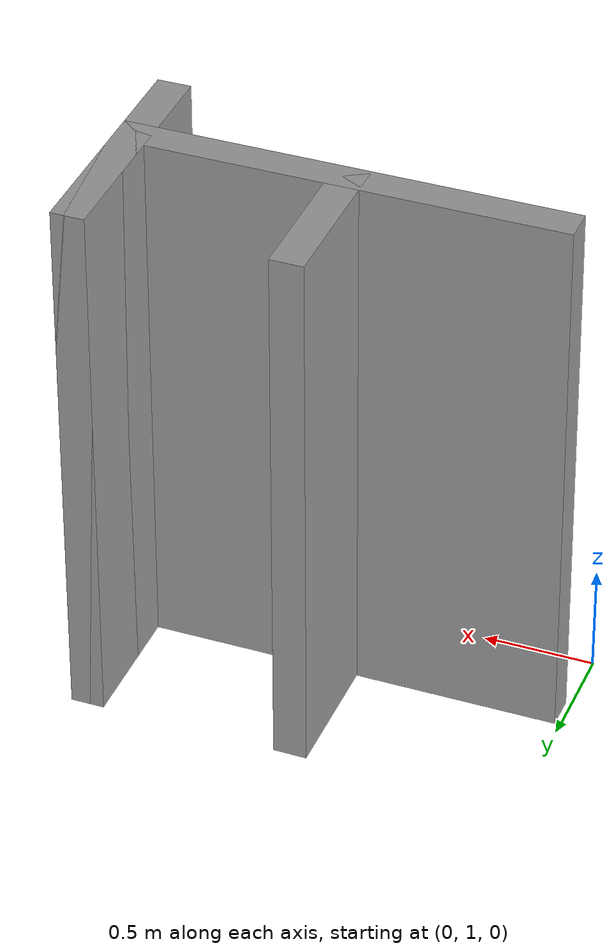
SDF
<?xml version='1.0'?>
<sdf version='1.7'>
  <model name='plannerTest'>
    <pose>1.0125 1.0225 0 0 -0 0</pose>
    <link name='Wall_0'>
      <collision name='Wall_0_Collision'>
        <geometry>
          <box>
            <size>2 0.15 2.5</size>
          </box>
        </geometry>
        <pose>0 0 1.25 0 -0 0</pose>
      </collision>
      <visual name='Wall_0_Visual'>
        <pose>0 0 1.25 0 -0 0</pose>
        <geometry>
          <box>
            <size>2 0.15 2.5</size>
          </box>
        </geometry>
        <material>
          <script>
            <uri>file://media/materials/scripts/gazebo.material</uri>
            <name>Gazebo/Grey</name>
          </script>
          <ambient>1 1 1 1</ambient>
        </material>
        <meta>
          <layer>0</layer>
        </meta>
      </visual>
      <pose>0.0125 0.3475 0 0 -0 0</pose>
    </link>
    <link name='Wall_2'>
      <collision name='Wall_2_Collision'>
        <geometry>
          <box>
            <size>0.75 0.15 2.5</size>
          </box>
        </geometry>
        <pose>0 0 1.25 0 -0 0</pose>
      </collision>
      <visual name='Wall_2_Visual'>
        <pose>0 0 1.25 0 -0 0</pose>
        <geometry>
          <box>
            <size>0.75 0.15 2.5</size>
          </box>
        </geometry>
        <material>
          <script>
            <uri>file://media/materials/scripts/gazebo.material</uri>
            <name>Gazebo/Grey</name>
          </script>
          <ambient>1 1 1 1</ambient>
        </material>
        <meta>
          <layer>0</layer>
        </meta>
      </visual>
      <pose>0.9375 0.6475 0 0 -0 1.5708</pose>
    </link>
    <link name='Wall_3'>
      <collision name='Wall_3_Collision'>
        <geometry>
          <box>
            <size>0.75 0.15 2.5</size>
          </box>
        </geometry>
        <pose>0 0 1.25 0 -0 0</pose>
      </collision>
      <visual name='Wall_3_Visual'>
        <pose>0 0 1.25 0 -0 0</pose>
        <geometry>
          <box>
            <size>0.75 0.15 2.5</size>
          </box>
        </geometry>
        <material>
          <script>
            <uri>file://media/materials/scripts/gazebo.material</uri>
            <name>Gazebo/Grey</name>
          </script>
          <ambient>1 1 1 1</ambient>
        </material>
        <meta>
          <layer>0</layer>
        </meta>
      </visual>
      <pose>0.9375 0.6475 0 0 -0 -1.5708</pose>
    </link>
    <link name='Wall_4'>
      <collision name='Wall_4_Collision'>
        <geometry>
          <box>
            <size>0.5 0.15 2.5</size>
          </box>
        </geometry>
        <pose>0 0 1.25 0 -0 0</pose>
      </collision>
      <visual name='Wall_4_Visual'>
        <pose>0 0 1.25 0 -0 0</pose>
        <geometry>
          <box>
            <size>0.5 0.15 2.5</size>
          </box>
        </geometry>
        <material>
          <script>
            <uri>file://media/materials/scripts/gazebo.material</uri>
            <name>Gazebo/Grey</name>
          </script>
          <ambient>1 1 1 1</ambient>
        </material>
        <meta>
          <layer>0</layer>
        </meta>
      </visual>
      <pose>0.9375 0.1725 0 0 -0 -1.5708</pose>
    </link>
    <link name='Wall_6'>
      <collision name='Wall_6_Collision'>
        <geometry>
          <box>
            <size>0.75 0.15 2.5</size>
          </box>
        </geometry>
        <pose>0 0 1.25 0 -0 0</pose>
      </collision>
      <visual name='Wall_6_Visual'>
        <pose>0 0 1.25 0 -0 0</pose>
        <geometry>
          <box>
            <size>0.75 0.15 2.5</size>
          </box>
        </geometry>
        <material>
          <script>
            <uri>file://media/materials/scripts/gazebo.material</uri>
            <name>Gazebo/Grey</name>
          </script>
          <ambient>1 1 1 1</ambient>
        </material>
        <meta>
          <layer>0</layer>
        </meta>
      </visual>
      <pose>-0.0025 0.6475 0 0 -0 -1.5708</pose>
    </link>
    <static>1</static>
  </model>
</sdf>
